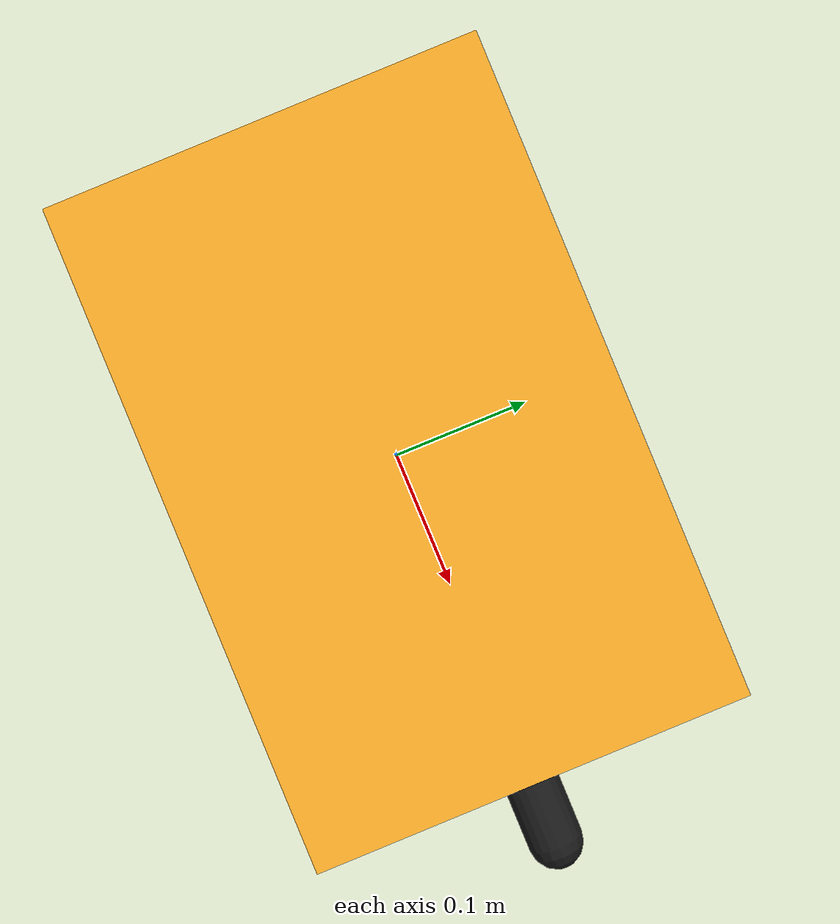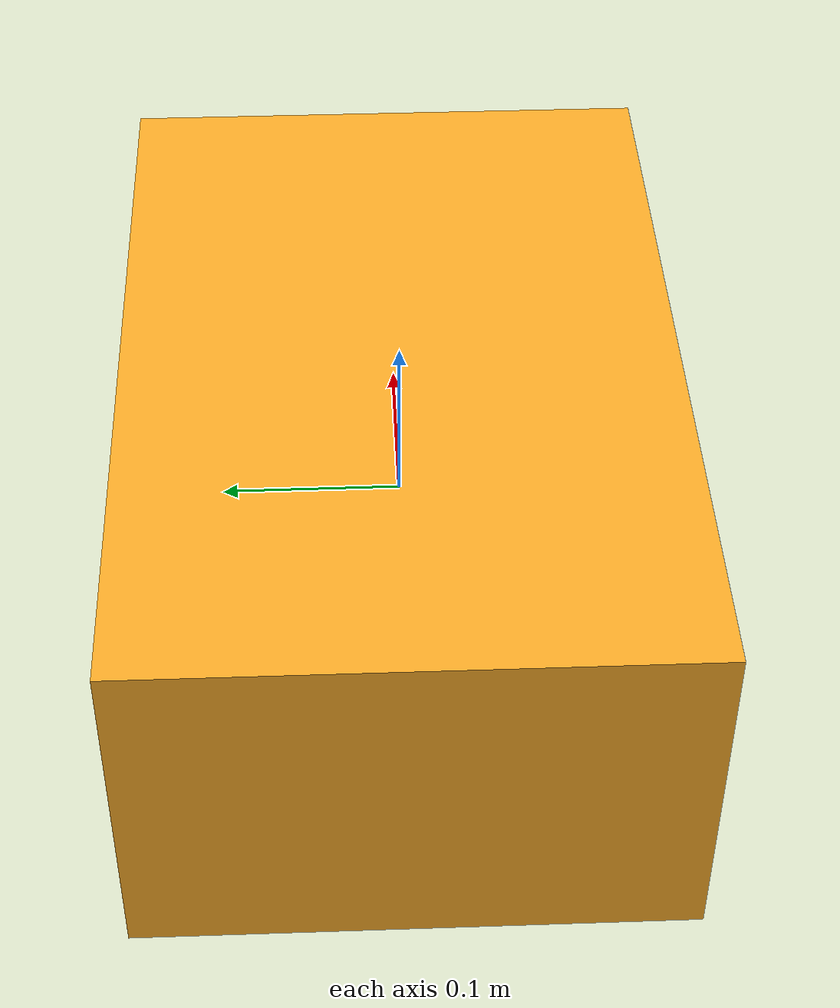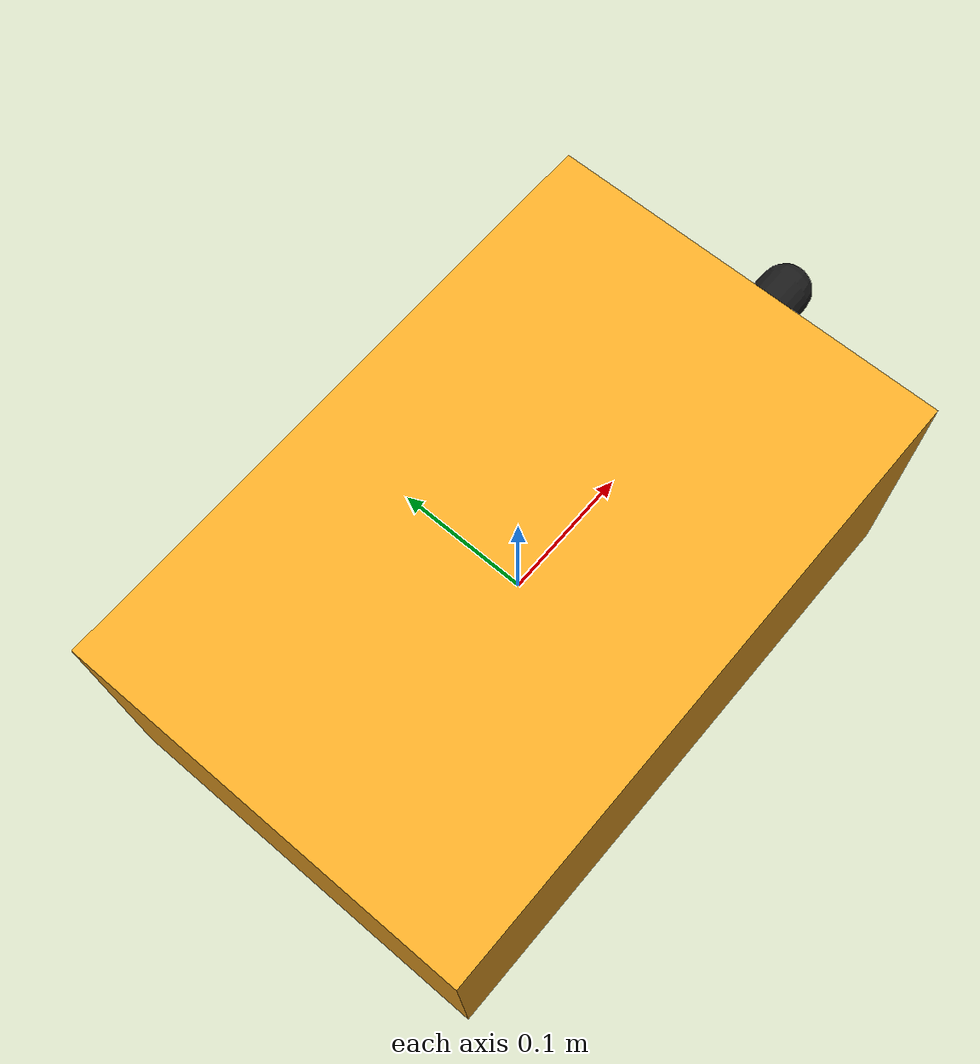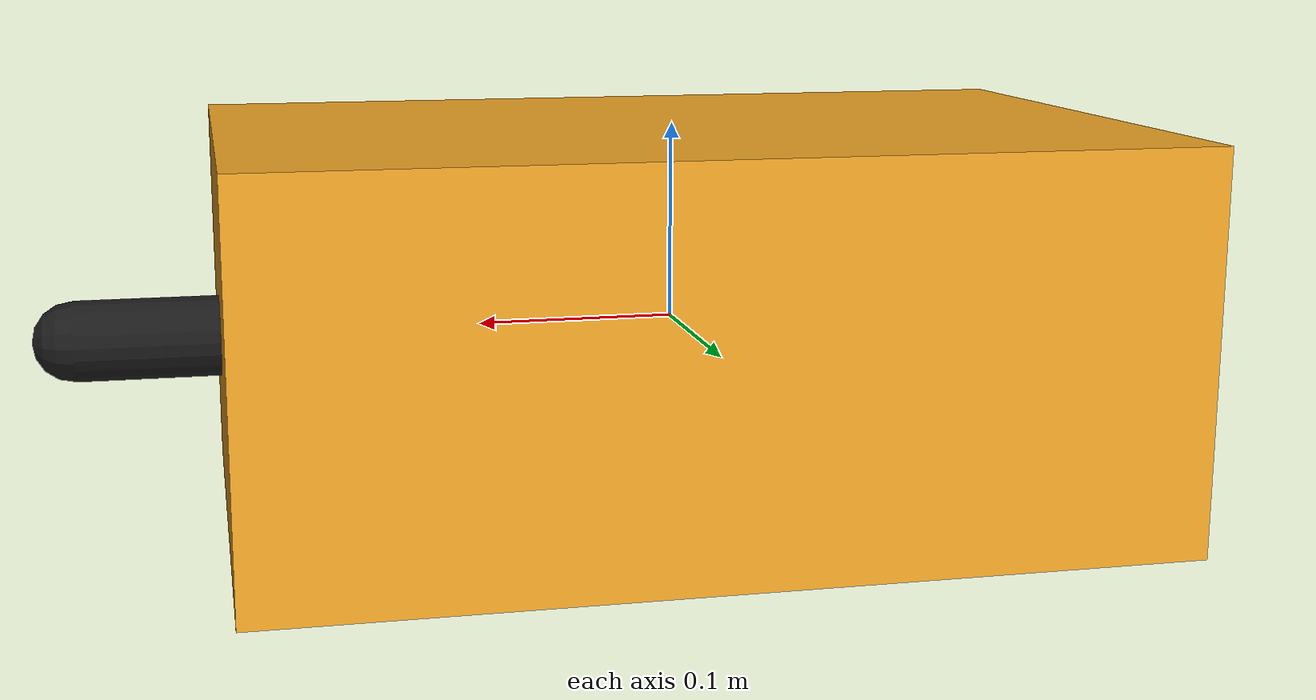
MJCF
<mujoco model="auv">
  <option gravity="0 0 -9.81" timestep="0.004" density="1000" viscosity="0.001"/>

  <worldbody>
    <light pos="0 0 3"/>
    <geom type="plane" size="10 10 0.1" pos="0 0 -3" rgba="0.25 0.35 0.45 1"/>

    <body name="rov" pos="0 0 0" gravcomp="1">      <!-- neutral buoyancy -->
      <freejoint/>
      <geom type="box" size="0.23 0.15 0.10" density="1000"
            fluidshape="ellipsoid" fluidcoef="0.5 0.25 1.5 1.0 1.0"
            rgba="0.95 0.65 0.15 1"/>
      <geom type="capsule" fromto="0.23 0 0  0.30 0 0" size="0.02"
            rgba="0.1 0.1 0.1 1"/>
    </body>
  </worldbody>
</mujoco>
